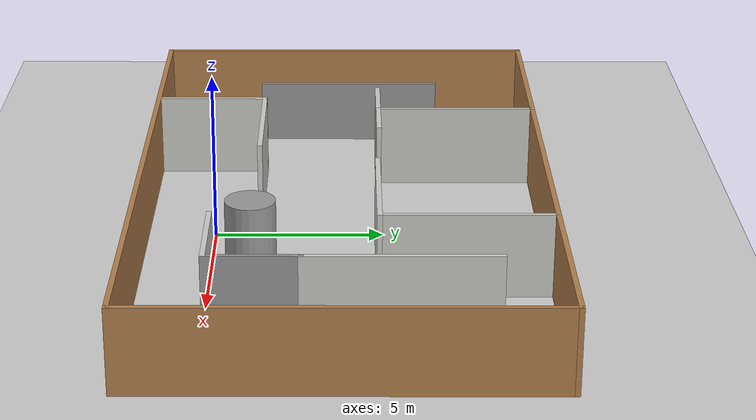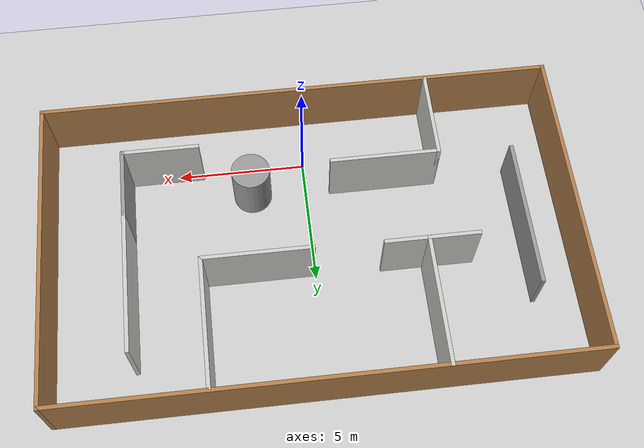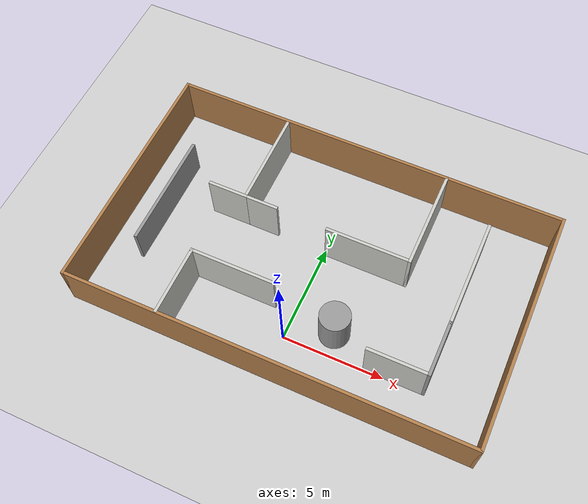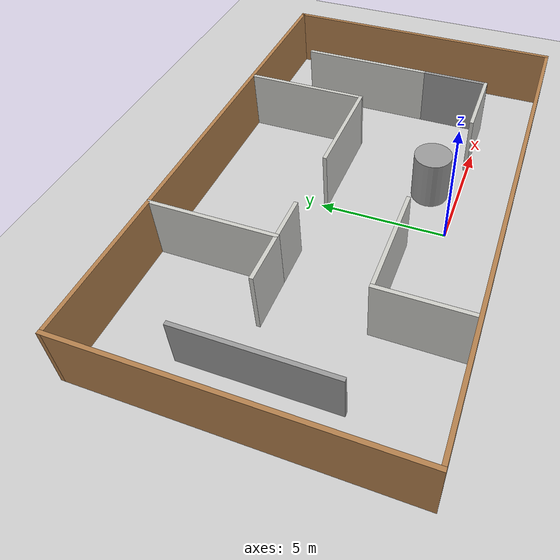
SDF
<sdf version="1.6">
 <world name="default">
  <light name="sun" type="directional">
   <pose>0 0 10 0 -0 0</pose>
   <diffuse>0.8 0.8 0.8 1</diffuse>
   <specular>0.2 0.2 0.2 1</specular>
   <attenuation>
    <range>1000</range>
    <constant>0.9</constant>
    <linear>0.01</linear>
    <quadratic>0.001</quadratic>
   </attenuation>
   <direction>-0.5 0.1 -0.9</direction>
  </light>
  <model name="ground_plane">
   <static>1</static>
   <link name="link">
    <collision name="collision">
     <geometry><plane><normal>0 0 1</normal><size>100 100</size></plane></geometry>
     <surface><friction><ode><mu>100</mu><mu2>50</mu2></ode></friction></surface>
    </collision>
    <visual name="visual">
     <cast_shadows>0</cast_shadows>
     <geometry><plane><normal>0 0 1</normal><size>100 100</size></plane></geometry>
     <material>
      <script><uri>file://media/materials/scripts/gazebo.material</uri><name>Gazebo/Grey</name></script>
     </material>
    </visual>
   </link>
  </model>
  <gravity>0 0 -9.8</gravity>
  <magnetic_field>6e-06 2.3e-05 -4.2e-05</magnetic_field>
  <atmosphere type="adiabatic"/>
  <physics name="default_physics" default="0" type="ode">
   <max_step_size>0.001</max_step_size>
   <real_time_factor>1</real_time_factor>
   <real_time_update_rate>1000</real_time_update_rate>
  </physics>
  <scene><ambient>0.4 0.4 0.4 1</ambient><background>0.7 0.7 0.7 1</background><shadows>1</shadows></scene>
  <audio><device>default</device></audio>
  <spherical_coordinates>
   <surface_model>EARTH_WGS84</surface_model>
   <latitude_deg>0</latitude_deg>
   <longitude_deg>0</longitude_deg>
   <elevation>0</elevation>
   <heading_deg>0</heading_deg>
  </spherical_coordinates>
  <model name="room_20x12">
   <pose>0.045 3.835 0 0 -0 0</pose>
   <link name="Wall_0">
    <collision name="Wall_0_Collision">
     <geometry><box><size>20 0.15 2.5</size></box></geometry>
     <pose>0 0 1.25 0 -0 0</pose>
    </collision>
    <visual name="Wall_0_Visual">
     <pose>0 0 1.25 0 -0 0</pose>
     <geometry><box><size>20 0.15 2.5</size></box></geometry>
     <material>
      <script><uri>file://media/materials/scripts/gazebo.material</uri><name>Gazebo/Wood</name></script>
      <ambient>1 1 1 1</ambient>
     </material>
     <meta><layer>0</layer></meta>
    </visual>
    <pose>-0 -5.925 0 0 -0 0</pose>
   </link>
   <link name="Wall_10">
    <collision name="Wall_10_Collision">
     <geometry><box><size>4.25 0.15 2.5</size></box></geometry>
     <pose>0 0 1.25 0 -0 0</pose>
    </collision>
    <visual name="Wall_10_Visual">
     <pose>0 0 1.25 0 -0 0</pose>
     <geometry><box><size>4.25 0.15 2.5</size></box></geometry>
     <material>
      <script><uri>file://media/materials/scripts/gazebo.material</uri><name>Gazebo/CeilingTiled</name></script>
      <ambient>0.760784 0.662745 0.627451 1</ambient>
     </material>
     <meta><layer>0</layer></meta>
    </visual>
    <pose>2.10556 0.990035 0 0 -0 3.14159</pose>
   </link>
   <link name="Wall_12">
    <collision name="Wall_12_Collision">
     <geometry><box><size>5 0.15 2.5</size></box></geometry>
     <pose>0 0 1.25 0 -0 0</pose>
    </collision>
    <visual name="Wall_12_Visual">
     <pose>0 0 1.25 0 -0 0</pose>
     <geometry><box><size>5 0.15 2.5</size></box></geometry>
     <material>
      <script><uri>file://media/materials/scripts/gazebo.material</uri><name>Gazebo/CeilingTiled</name></script>
      <ambient>0.760784 0.662745 0.627451 1</ambient>
     </material>
     <meta><layer>0</layer></meta>
    </visual>
    <pose>-4.21169 3.49549 0 0 -0 -1.5708</pose>
   </link>
   <link name="Wall_13">
    <collision name="Wall_13_Collision">
     <geometry><box><size>2 0.15 2.5</size></box></geometry>
     <pose>0 0 1.25 0 -0 0</pose>
    </collision>
    <visual name="Wall_13_Visual">
     <pose>0 0 1.25 0 -0 0</pose>
     <geometry><box><size>2 0.15 2.5</size></box></geometry>
     <material>
      <script><uri>file://media/materials/scripts/gazebo.material</uri><name>Gazebo/CeilingTiled</name></script>
      <ambient>0.760784 0.662745 0.627451 1</ambient>
     </material>
     <meta><layer>0</layer></meta>
    </visual>
    <pose>-5.13669 1.07049 0 0 -0 3.14159</pose>
   </link>
   <link name="Wall_15">
    <collision name="Wall_15_Collision">
     <geometry><box><size>1.75 0.15 2.5</size></box></geometry>
     <pose>0 0 1.25 0 -0 0</pose>
    </collision>
    <visual name="Wall_15_Visual">
     <pose>0 0 1.25 0 -0 0</pose>
     <geometry><box><size>1.75 0.15 2.5</size></box></geometry>
     <material>
      <script><uri>file://media/materials/scripts/gazebo.material</uri><name>Gazebo/CeilingTiled</name></script>
      <ambient>0.760784 0.662745 0.627451 1</ambient>
     </material>
     <meta><layer>0</layer></meta>
    </visual>
    <pose>-3.41169 1.07049 0 0 -0 0</pose>
   </link>
   <link name="Wall_17">
    <collision name="Wall_17_Collision">
     <geometry><box><size>3 0.15 2.5</size></box></geometry>
     <pose>0 0 1.25 0 -0 0</pose>
    </collision>
    <visual name="Wall_17_Visual">
     <pose>0 0 1.25 0 -0 0</pose>
     <geometry><box><size>3 0.15 2.5</size></box></geometry>
     <material>
      <script><uri>file://media/materials/scripts/gazebo.material</uri><name>Gazebo/CeilingTiled</name></script>
      <ambient>0.760784 0.662745 0.627451 1</ambient>
     </material>
     <meta><layer>0</layer></meta>
    </visual>
    <pose>5.43976 -3.73403 0 0 -0 0</pose>
   </link>
   <link name="Wall_18">
    <collision name="Wall_18_Collision">
     <geometry><box><size>2.75 0.15 2.5</size></box></geometry>
     <pose>0 0 1.25 0 -0 0</pose>
    </collision>
    <visual name="Wall_18_Visual">
     <pose>0 0 1.25 0 -0 0</pose>
     <geometry><box><size>2.75 0.15 2.5</size></box></geometry>
     <material>
      <script><uri>file://media/materials/scripts/gazebo.material</uri><name>Gazebo/Grey</name></script>
      <ambient>1 1 1 1</ambient>
     </material>
     <meta><layer>0</layer></meta>
    </visual>
    <pose>6.86476 -2.43403 0 0 -0 1.5708</pose>
   </link>
   <link name="Wall_2">
    <collision name="Wall_2_Collision">
     <geometry><box><size>12 0.15 2.5</size></box></geometry>
     <pose>0 0 1.25 0 -0 0</pose>
    </collision>
    <visual name="Wall_2_Visual">
     <pose>0 0 1.25 0 -0 0</pose>
     <geometry><box><size>12 0.15 2.5</size></box></geometry>
     <material>
      <script><uri>file://media/materials/scripts/gazebo.material</uri><name>Gazebo/Wood</name></script>
      <ambient>1 1 1 1</ambient>
     </material>
     <meta><layer>0</layer></meta>
    </visual>
    <pose>9.925 0 0 0 -0 1.5708</pose>
   </link>
   <link name="Wall_20">
    <collision name="Wall_20_Collision">
     <geometry><box><size>5.5 0.15 2.5</size></box></geometry>
     <pose>0 0 1.25 0 -0 0</pose>
    </collision>
    <visual name="Wall_20_Visual">
     <pose>0 0 1.25 0 -0 0</pose>
     <geometry><box><size>5.5 0.15 2.5</size></box></geometry>
     <material>
      <script><uri>file://media/materials/scripts/gazebo.material</uri><name>Gazebo/CeilingTiled</name></script>
      <ambient>0.760784 0.662745 0.627451 1</ambient>
     </material>
     <meta><layer>0</layer></meta>
    </visual>
    <pose>6.86476 1.54097 0 0 -0 1.5708</pose>
   </link>
   <link name="Wall_3">
    <collision name="Wall_3_Collision">
     <geometry><box><size>20 0.15 2.5</size></box></geometry>
     <pose>0 0 1.25 0 -0 0</pose>
    </collision>
    <visual name="Wall_3_Visual">
     <pose>0 0 1.25 0 -0 0</pose>
     <geometry><box><size>20 0.15 2.5</size></box></geometry>
     <material>
      <script><uri>file://media/materials/scripts/gazebo.material</uri><name>Gazebo/Wood</name></script>
      <ambient>1 1 1 1</ambient>
     </material>
     <meta><layer>0</layer></meta>
    </visual>
    <pose>-0 5.925 0 0 -0 3.14159</pose>
   </link>
   <link name="Wall_4">
    <collision name="Wall_4_Collision">
     <geometry><box><size>12 0.15 2.5</size></box></geometry>
     <pose>0 0 1.25 0 -0 0</pose>
    </collision>
    <visual name="Wall_4_Visual">
     <pose>0 0 1.25 0 -0 0</pose>
     <geometry><box><size>12 0.15 2.5</size></box></geometry>
     <material>
      <script><uri>file://media/materials/scripts/gazebo.material</uri><name>Gazebo/Wood</name></script>
      <ambient>1 1 1 1</ambient>
     </material>
     <meta><layer>0</layer></meta>
    </visual>
    <pose>-9.925 0 0 0 -0 -1.5708</pose>
   </link>
   <link name="Wall_6">
    <collision name="Wall_6_Collision">
     <geometry><box><size>3.5 0.15 2.5</size></box></geometry>
     <pose>0 0 1.25 0 -0 0</pose>
    </collision>
    <visual name="Wall_6_Visual">
     <pose>0 0 1.25 0 -0 0</pose>
     <geometry><box><size>3.5 0.15 2.5</size></box></geometry>
     <material>
      <script><uri>file://media/materials/scripts/gazebo.material</uri><name>Gazebo/CeilingTiled</name></script>
      <ambient>0.760784 0.662745 0.627451 1</ambient>
     </material>
     <meta><layer>0</layer></meta>
    </visual>
    <pose>-5.15703 -4.21118 0 0 -0 1.5708</pose>
   </link>
   <link name="Wall_7">
    <collision name="Wall_7_Collision">
     <geometry><box><size>4.25 0.15 2.5</size></box></geometry>
     <pose>0 0 1.25 0 -0 0</pose>
    </collision>
    <visual name="Wall_7_Visual">
     <pose>0 0 1.25 0 -0 0</pose>
     <geometry><box><size>4.25 0.15 2.5</size></box></geometry>
     <material>
      <script><uri>file://media/materials/scripts/gazebo.material</uri><name>Gazebo/CeilingTiled</name></script>
      <ambient>0.760784 0.662745 0.627451 1</ambient>
     </material>
     <meta><layer>0</layer></meta>
    </visual>
    <pose>-3.10703 -2.53618 0 0 -0 0</pose>
   </link>
   <link name="Wall_9">
    <collision name="Wall_9_Collision">
     <geometry><box><size>5 0.15 2.5</size></box></geometry>
     <pose>0 0 1.25 0 -0 0</pose>
    </collision>
    <visual name="Wall_9_Visual">
     <pose>0 0 1.25 0 -0 0</pose>
     <geometry><box><size>5 0.15 2.5</size></box></geometry>
     <material>
      <script><uri>file://media/materials/scripts/gazebo.material</uri><name>Gazebo/CeilingTiled</name></script>
      <ambient>0.760784 0.662745 0.627451 1</ambient>
     </material>
     <meta><layer>0</layer></meta>
    </visual>
    <pose>4.15556 3.41503 0 0 -0 -1.5708</pose>
   </link>
   <static>1</static>
  </model>
  <model name="unit_cylinder">
   <link name="link">
    <inertial>
     <mass>6.74216</mass>
     <inertia><ixx>6.16343</ixx><ixy>0</ixy><ixz>0</ixz><iyy>6.16343</iyy><iyz>0</iyz><izz>1.86234</izz></inertia>
    </inertial>
    <visual name="visual">
     <geometry><cylinder><radius>0.743268</radius><length>3.05166</length></cylinder></geometry>
     <material>
      <script><name>Gazebo/Grey</name><uri>file://media/materials/scripts/gazebo.material</uri></script>
     </material>
    </visual>
    <collision name="collision">
     <geometry><cylinder><radius>0.743268</radius><length>3.05166</length></cylinder></geometry>
     <surface>
      <friction>
       <ode><mu>1</mu><mu2>1</mu2><fdir1>0 0 0</fdir1><slip1>0</slip1><slip2>0</slip2></ode>
       <torsional>
        <coefficient>1</coefficient>
        <patch_radius>0</patch_radius>
        <surface_radius>0</surface_radius>
        <use_patch_radius>1</use_patch_radius>
        <ode><slip>0</slip></ode>
       </torsional>
      </friction>
      <bounce><restitution_coefficient>0</restitution_coefficient><threshold>1e+06</threshold></bounce>
      <contact>
       <collide_without_contact>0</collide_without_contact>
       <collide_without_contact_bitmask>1</collide_without_contact_bitmask>
       <collide_bitmask>1</collide_bitmask>
       <ode>
        <soft_cfm>0</soft_cfm>
        <soft_erp>0.2</soft_erp>
        <kp>1e+13</kp>
        <kd>1</kd>
        <max_vel>0.01</max_vel>
        <min_depth>0</min_depth>
       </ode>
       <bullet>
        <split_impulse>1</split_impulse>
        <split_impulse_penetration_threshold>-0.01</split_impulse_penetration_threshold>
        <soft_cfm>0</soft_cfm>
        <soft_erp>0.2</soft_erp>
        <kp>1e+13</kp>
        <kd>1</kd>
       </bullet>
      </contact>
     </surface>
    </collision>
   </link>
   <link name="link_0">
    <inertial>
     <mass>2.57692</mass>
     <inertia><ixx>8.98703</ixx><ixy>0</ixy><ixz>0</ixz><iyy>1.78597</iyy><iyz>0</iyz><izz>7.21131</izz></inertia>
    </inertial>
    <pose>-10.1923 2.83685 -4.8e-05 -3e-06 -4e-06 -0</pose>
    <visual name="visual">
     <geometry><box><size>0.154446 5.79286 2.87974</size></box></geometry>
     <material>
      <lighting>1</lighting>
      <script><uri>file://media/materials/scripts/gazebo.material</uri><name>Gazebo/Grey</name></script>
     </material>
    </visual>
    <collision name="collision">
     <geometry><box><size>0.154446 5.79286 2.87974</size></box></geometry>
     <surface>
      <friction>
       <ode><mu>1</mu><mu2>1</mu2><fdir1>0 0 0</fdir1><slip1>0</slip1><slip2>0</slip2></ode>
       <torsional>
        <coefficient>1</coefficient>
        <patch_radius>0</patch_radius>
        <surface_radius>0</surface_radius>
        <use_patch_radius>1</use_patch_radius>
        <ode><slip>0</slip></ode>
       </torsional>
      </friction>
      <bounce><restitution_coefficient>0</restitution_coefficient><threshold>1e+06</threshold></bounce>
      <contact>
       <collide_without_contact>0</collide_without_contact>
       <collide_without_contact_bitmask>1</collide_without_contact_bitmask>
       <collide_bitmask>1</collide_bitmask>
       <ode>
        <soft_cfm>0</soft_cfm>
        <soft_erp>0.2</soft_erp>
        <kp>1e+13</kp>
        <kd>1</kd>
        <max_vel>0.01</max_vel>
        <min_depth>0</min_depth>
       </ode>
       <bullet>
        <split_impulse>1</split_impulse>
        <split_impulse_penetration_threshold>-0.01</split_impulse_penetration_threshold>
        <soft_cfm>0</soft_cfm>
        <soft_erp>0.2</soft_erp>
        <kp>1e+13</kp>
        <kd>1</kd>
       </bullet>
      </contact>
     </surface>
    </collision>
   </link>
   <static>1</static>
   <pose>2.11032 1.13717 0.499997 3e-06 4e-06 -0</pose>
  </model>
  <light name="user_point_light_0" type="point">
   <pose>-6.80278 7.63839 1 0 -0 0</pose>
   <diffuse>0.5 0.5 0.5 1</diffuse>
   <specular>0.1 0.1 0.1 1</specular>
   <attenuation>
    <range>20</range>
    <constant>0.5</constant>
    <linear>0.01</linear>
    <quadratic>0.001</quadratic>
   </attenuation>
   <cast_shadows>0</cast_shadows>
   <direction>0 0 -1</direction>
  </light>
  <light name="user_point_light_1" type="point">
   <pose>2.064 0.937392 1 0 -0 0</pose>
   <diffuse>0.5 0.5 0.5 1</diffuse>
   <specular>0.1 0.1 0.1 1</specular>
   <attenuation>
    <range>20</range>
    <constant>0.5</constant>
    <linear>0.01</linear>
    <quadratic>0.001</quadratic>
   </attenuation>
   <cast_shadows>0</cast_shadows>
   <direction>0 0 -1</direction>
  </light>
 </world>
</sdf>
